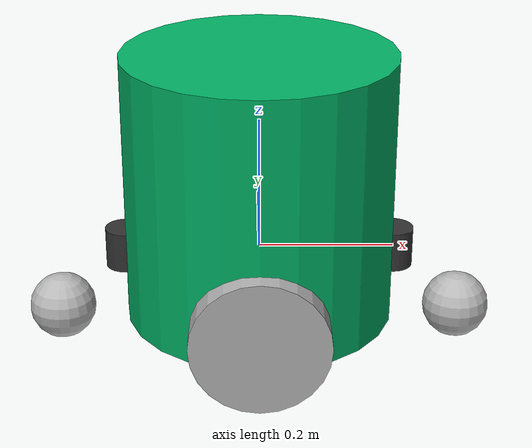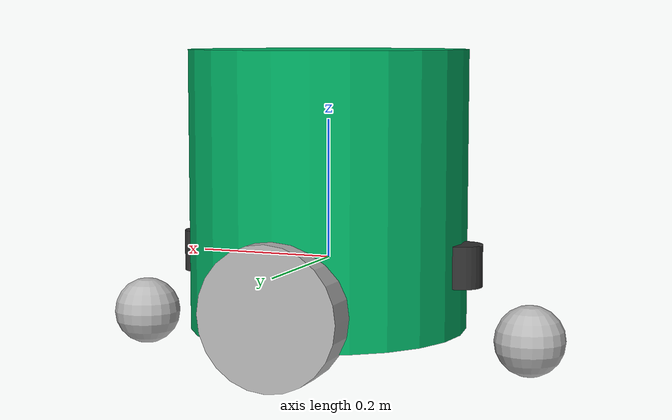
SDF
<?xml version="1.0" encoding="UTF-8"?>

<sdf version="1.4">
   <model name="robot">
      <static>false</static>

      <link name="base_link">
         <pose>0 0 0.1 0 0 0</pose>
         <inertial>
            <inertia>
               <ixx>0</ixx>
               <iyy>0</iyy>
               <izz>0</izz>
               <ixy>0</ixy>
               <ixz>0</ixz>
               <iyz>0</iyz>
            </inertia>
            <mass>4.5</mass>
         </inertial>
         <collision name="collision">
            <geometry>
               <cylinder>
                  <radius>0.2</radius>
		            <length>0.4</length>
               </cylinder>
            </geometry>
         </collision>
         <visual name="visual">
            <geometry>
               <cylinder>
                  <radius>0.2</radius>
                  <length>0.4</length>
               </cylinder>
            </geometry>
            <material>
               <ambient>0 0.7 0.4 1</ambient>
               <diffuse>0 0.7 0.4 1</diffuse>
               <specular>0.1 0.1 0.1 1</specular>
               <emissive>0 0 0 0</emissive>
            </material>
         </visual>
         <collision name="caster_collision_front">
            <pose>0.3 0 -0.2 0 0 0</pose>
            <geometry>
               <sphere>
                  <radius>.05</radius>
               </sphere>
            </geometry>
            <surface>
               <friction>
                  <ode>
                     <mu>0.0</mu>
                     <mu2>0.0</mu2>
                     <slip1>0.0</slip1>
                     <slip2>0.0</slip2>
                  </ode>
               </friction>
            </surface>
         </collision>
         <visual name="caster_visual_front">
            <pose>0.3 0 -0.2 0 0 0</pose>
            <geometry>
               <sphere>
                  <radius>.05</radius>
               </sphere>
            </geometry>
         </visual>
         <collision name="caster_collision_back">
            <pose>-0.3 0 -0.2 0 0 0</pose>
            <geometry>
               <sphere>
                  <radius>.05</radius>
               </sphere>
            </geometry>
            <surface>
               <friction>
                  <ode>
                     <mu>0.0</mu>
                     <mu2>0.0</mu2>
                     <slip1>0.0</slip1>
                     <slip2>0.0</slip2>
                  </ode>
               </friction>
            </surface>
         </collision>
         <visual name="caster_visual_back">
            <pose>-0.3 0 -0.2 0 0 0</pose>
            <geometry>
               <sphere>
                  <radius>.05</radius>
               </sphere>
            </geometry>
         </visual>
      </link>

      <link name="left_wheel">
         <pose>0 0.2 -0.051 0 1.5707 1.5707</pose>
         <collision name="collision">
            <geometry>
               <cylinder>
                  <radius>.1</radius>
                  <length>.05</length>
               </cylinder>
            </geometry>
         </collision>
         <visual name="visual">
            <geometry>
               <cylinder>
                  <radius>.1</radius>
                  <length>.05</length>
               </cylinder>
            </geometry>
            <material>
               <ambient>0.7 0.7 0.7 1</ambient>
               <diffuse>0.7 0.7 0.7 1</diffuse>
               <specular>0.1 0.1 0.1 1</specular>
               <emissive>0 0 0 0</emissive>
            </material>
         </visual>
      </link>

      <link name="right_wheel">
         <pose>0 -0.2 -0.051 0 1.5707 1.5707</pose>
         <collision name="collision">
            <geometry>
               <cylinder>
                  <radius>.1</radius>
                  <length>.05</length>
               </cylinder>
            </geometry>
         </collision>
         <visual name="visual">
            <geometry>
               <cylinder>
                  <radius>.1</radius>
                  <length>.05</length>
               </cylinder>
            </geometry>
            <material>
               <ambient>0.7 0.7 0.7 1</ambient>
               <diffuse>0.7 0.7 0.7 1</diffuse>
               <specular>0.1 0.1 0.1 1</specular>
               <emissive>0 0 0 0</emissive>
            </material>
         </visual>
      </link>

      <!-- Front Laser -->
      <link name="laser_front">
         <pose>0.2 0 0.0 0.000000 0.000000 0.000000</pose>
         <gravity>0</gravity>
         <inertial>
            <mass>0.100000</mass>
            <inertia>
               <ixx>1.000000</ixx>
               <ixy>0.000000</ixy>
               <ixz>0.000000</ixz>
               <iyy>1.000000</iyy>
               <iyz>0.000000</iyz>
               <izz>1.000000</izz>
            </inertia>
         </inertial>
         <visual name="visual">
            <geometry>
               <cylinder>
                  <radius>.03</radius>
                  <length>.06</length>
               </cylinder>
            </geometry>
            <material>
               <ambient>0.2 0.2 0.2 1</ambient>
               <diffuse>0.2 0.2 0.2 1</diffuse>
               <specular>0.1 0.1 0.1 1</specular>
               <emissive>0 0 0 0</emissive>
            </material>
         </visual>

         <collision name="collision-base">
            <pose>0.000000 0.000000 -0.014500 0.000000 0.000000 0.000000</pose>
            <geometry>
               <box>
                  <size>0.050000 0.050000 0.041000</size>
               </box>
            </geometry>
            <max_contacts>10</max_contacts>
         </collision>
         <collision name="collision-top">
            <pose>0.000000 0.000000 0.020500 0.000000 0.000000 0.000000</pose>
            <geometry>
               <cylinder>
                  <radius>0.021000</radius>
                  <length>0.029000</length>
               </cylinder>
            </geometry>
            <max_contacts>10</max_contacts>
         </collision>

         <sensor name="laser_front" type="ray">
            <ray>
               <scan>
                  <horizontal>
                     <samples>6</samples>
                     <resolution>1.000000</resolution>
                     <min_angle>-1.570000</min_angle>
                     <max_angle>1.570000</max_angle>
                  </horizontal>
               </scan>
               <range>
                  <min>0.080000</min>
                  <max>10.000000</max>
                  <resolution>0.010000</resolution>
               </range>
            </ray>
            <update_rate>20.000000</update_rate>
            <always_on>1</always_on>
            <visualize>1</visualize>

            <plugin name="gazebo_ros_head_hokuyo_controller" filename="libgazebo_ros_laser.so">
               <topicName>laser_front/scan</topicName>
               <frameName>laser_front</frameName>
               <robotNamespace></robotNamespace>
            </plugin>
         </sensor>

         <velocity_decay>
            <linear>0.000000</linear>
            <angular>0.000000</angular>
         </velocity_decay>
         <self_collide>0</self_collide>
         <kinematic>0</kinematic>
      </link>

      <!-- Back Laser -->
      <link name="laser_back">
         <pose>-0.2 0 0.0  0.0 0.0 3.1415</pose>
         <gravity>0</gravity>
         <inertial>
            <mass>0.100000</mass>
            <inertia>
               <ixx>1.000000</ixx>
               <ixy>0.000000</ixy>
               <ixz>0.000000</ixz>
               <iyy>1.000000</iyy>
               <iyz>0.000000</iyz>
               <izz>1.000000</izz>
            </inertia>
         </inertial>
         <visual name="visual">
            <geometry>
               <cylinder>
                  <radius>.03</radius>
                  <length>.06</length>
               </cylinder>
            </geometry>
            <material>
               <ambient>0.2 0.2 0.2 1</ambient>
               <diffuse>0.2 0.2 0.2 1</diffuse>
               <specular>0.1 0.1 0.1 1</specular>
               <emissive>0 0 0 0</emissive>
            </material>
         </visual>

         <collision name="collision-base">
            <pose>0.000000 0.000000 -0.014500 0.000000 0.000000 0.000000</pose>
            <geometry>
               <box>
                  <size>0.050000 0.050000 0.041000</size>
               </box>
            </geometry>
            <max_contacts>10</max_contacts>
         </collision>
         <collision name="collision-top">
            <pose>0.000000 0.000000 0.020500 0.000000 0.000000 0.000000</pose>
            <geometry>
               <cylinder>
                  <radius>0.021000</radius>
                  <length>0.029000</length>
               </cylinder>
            </geometry>
            <max_contacts>10</max_contacts>
         </collision>

         <sensor name="laser_back" type="ray">
            <ray>
               <scan>
                  <horizontal>
                     <samples>2</samples>
                     <resolution>1.000000</resolution>
                     <min_angle>-0.2618</min_angle>
                     <max_angle>0.2618</max_angle>
                  </horizontal>
               </scan>
               <range>
                  <min>0.080000</min>
                  <max>10.000000</max>
                  <resolution>0.010000</resolution>
               </range>
            </ray>
            <update_rate>20.000000</update_rate>
            <always_on>1</always_on>
            <visualize>1</visualize>

            <plugin name="gazebo_ros_head_hokuyo_controller" filename="libgazebo_ros_laser.so">
               <topicName>laser_back/scan</topicName>
               <frameName>laser_back</frameName>
               <robotNamespace></robotNamespace>
            </plugin>
         </sensor>

         <velocity_decay>
            <linear>0.000000</linear>
            <angular>0.000000</angular>
         </velocity_decay>
         <self_collide>0</self_collide>
         <kinematic>0</kinematic>
      </link>

      <joint type="revolute" name="left_wheel_joint">
         <pose>0 0 -0.03 0 0 0</pose>
         <child>left_wheel</child>
         <parent>base_link</parent>
         <axis>
            <xyz>0 1 0</xyz>
         </axis>
      </joint>

      <joint type="revolute" name="right_wheel_joint">
         <pose>0 0 0.03 0 0 0</pose>
         <child>right_wheel</child>
         <parent>base_link</parent>
         <axis>
            <xyz>0 1 0</xyz>
         </axis>
      </joint>

      <joint name="joint_laser_front" type="fixed">
         <parent>base_link</parent>
         <child>laser_front</child>
         <axis>
            <xyz>0.000000 0.000000 0.000000</xyz>
            <limit>
               <lower>0.000000</lower>
               <upper>0.000000</upper>
            </limit>
         </axis>
      </joint>

      <joint name="joint_laser_back" type="fixed">
         <parent>base_link</parent>
         <child>laser_back</child>
         <axis>
            <xyz>0.000000 0.000000 0.000000</xyz>
            <limit>
               <lower>0.000000</lower>
               <upper>0.000000</upper>
            </limit>
         </axis>
      </joint>

      <plugin name="p3d_base_controller" filename="libgazebo_ros_p3d.so">
        <alwaysOn>true</alwaysOn>
        <updateRate>50.0</updateRate>
        <bodyName>base_link</bodyName>
        <topicName>ground_truth/state</topicName>
        <gaussianNoise>0.01</gaussianNoise>
        <frameName>world</frameName>
        <xyzOffsets>0 0 0</xyzOffsets>
        <rpyOffsets>0 0 0</rpyOffsets>
      </plugin>

      <!-- Attach the ROS Differential Drive Plugin to this model> -->
      <plugin name="differential_drive_controller" filename="libgazebo_ros_diff_drive.so">
         <robotNamespace />
         <alwaysOn>true</alwaysOn>
         <updateRate>10</updateRate>
         <legacyMode>true</legacyMode>
         <leftJoint>left_wheel_joint</leftJoint>
         <rightJoint>right_wheel_joint</rightJoint>
         <wheelSeparation>0.4</wheelSeparation>
         <wheelDiameter>0.2</wheelDiameter>
         <torque>20</torque>
         <commandTopic>cmd_vel</commandTopic>
         <odometryTopic>odom</odometryTopic>
         <odometryFrame>odom</odometryFrame>
         <robotBaseFrame>base_link</robotBaseFrame>
         <publishWheelTF>false</publishWheelTF>
         <publishWheelJointState>false</publishWheelJointState>
         <rosDebugLevel>na</rosDebugLevel>
         <wheelAcceleration>0</wheelAcceleration>
         <wheelTorque>5</wheelTorque>
         <odometrySource>world</odometrySource>
         <publishTf>1</publishTf>
      </plugin>

   </model>
</sdf>
